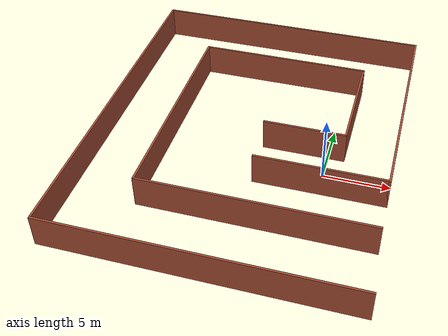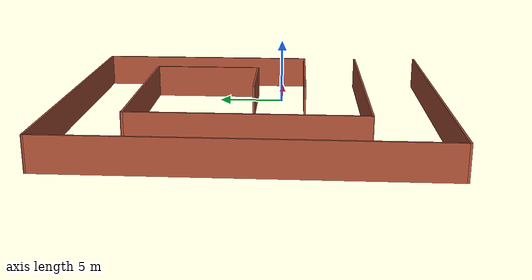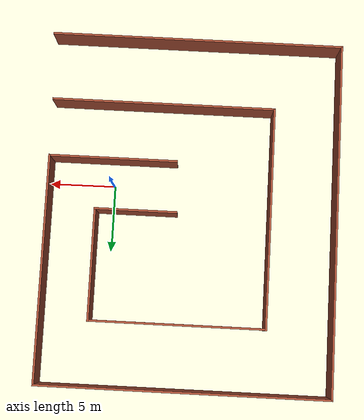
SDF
<sdf version="1.7">
 <world name="default">
  <scene><shadows>0</shadows><ambient>0.4 0.4 0.4 1</ambient><background>0.7 0.7 0.7 1</background></scene>
  <physics type="ode">
   <real_time_update_rate>1000</real_time_update_rate>
   <max_step_size>0.001</max_step_size>
   <real_time_factor>1</real_time_factor>
   <ode>
    <solver>
     <type>quick</type>
     <iters>150</iters>
     <precon_iters>0</precon_iters>
     <sor>1.4</sor>
     <use_dynamic_moi_rescaling>1</use_dynamic_moi_rescaling>
    </solver>
    <constraints>
     <cfm>1e-05</cfm>
     <erp>0.2</erp>
     <contact_max_correcting_vel>2000</contact_max_correcting_vel>
     <contact_surface_layer>0.01</contact_surface_layer>
    </constraints>
   </ode>
  </physics>
  <gravity>0 0 -9.8</gravity>
  <magnetic_field>6e-06 2.3e-05 -4.2e-05</magnetic_field>
  <atmosphere type="adiabatic"/>
  <audio><device>default</device></audio>
  <spherical_coordinates>
   <surface_model>EARTH_WGS84</surface_model>
   <latitude_deg>0</latitude_deg>
   <longitude_deg>0</longitude_deg>
   <elevation>0</elevation>
   <heading_deg>0</heading_deg>
  </spherical_coordinates>
  <model name="world">
   <pose>-5.90857 1.94145 0 0 -0 0</pose>
   <link name="Wall_10">
    <collision name="Wall_10_Collision">
     <geometry><box><size>13.3051 0.15 2.5</size></box></geometry>
     <pose>0 0 1.25 0 -0 0</pose>
    </collision>
    <visual name="Wall_10_Visual">
     <pose>0 0 1.25 0 -0 0</pose>
     <geometry><box><size>13.3051 0.15 2.5</size></box></geometry>
     <material>
      <script><uri>file://media/materials/scripts/gazebo.material</uri><name>Gazebo/Bricks</name></script>
      <ambient>1 1 1 1</ambient>
     </material>
     <meta><layer>0</layer></meta>
    </visual>
    <pose>0.51679 8.44126 0 0 -0 3.14159</pose>
   </link>
   <link name="Wall_11">
    <collision name="Wall_11_Collision">
     <geometry><box><size>16.7539 0.15 2.5</size></box></geometry>
     <pose>0 0 1.25 0 -0 0</pose>
    </collision>
    <visual name="Wall_11_Visual">
     <pose>0 0 1.25 0 -0 0</pose>
     <geometry><box><size>16.7539 0.15 2.5</size></box></geometry>
     <material>
      <script><uri>file://media/materials/scripts/gazebo.material</uri><name>Gazebo/Bricks</name></script>
      <ambient>1 1 1 1</ambient>
     </material>
     <meta><layer>0</layer></meta>
    </visual>
    <pose>-6.0607 0.179768 0 0 -0 -1.5708</pose>
   </link>
   <link name="Wall_12">
    <collision name="Wall_12_Collision">
     <geometry><box><size>17 0.15 2.5</size></box></geometry>
     <pose>0 0 1.25 0 -0 0</pose>
    </collision>
    <visual name="Wall_12_Visual">
     <pose>0 0 1.25 0 -0 0</pose>
     <geometry><box><size>17 0.15 2.5</size></box></geometry>
     <material>
      <script><uri>file://media/materials/scripts/gazebo.material</uri><name>Gazebo/Bricks</name></script>
      <ambient>1 1 1 1</ambient>
     </material>
     <meta><layer>0</layer></meta>
    </visual>
    <pose>2.36429 -8.16263 0 0 -0 0</pose>
   </link>
   <link name="Wall_15">
    <collision name="Wall_15_Collision">
     <geometry><box><size>9.75 0.15 2.5</size></box></geometry>
     <pose>0 0 1.25 0 -0 0</pose>
    </collision>
    <visual name="Wall_15_Visual">
     <pose>0 0 1.25 0 -0 0</pose>
     <geometry><box><size>9.75 0.15 2.5</size></box></geometry>
     <material>
      <script><uri>file://media/materials/scripts/gazebo.material</uri><name>Gazebo/Bricks</name></script>
      <ambient>1 1 1 1</ambient>
     </material>
     <meta><layer>0</layer></meta>
    </visual>
    <pose>5.97887 -3.785 0 0 -0 0</pose>
   </link>
   <link name="Wall_16">
    <collision name="Wall_16_Collision">
     <geometry><box><size>17.25 0.15 2.5</size></box></geometry>
     <pose>0 0 1.25 0 -0 0</pose>
    </collision>
    <visual name="Wall_16_Visual">
     <pose>0 0 1.25 0 -0 0</pose>
     <geometry><box><size>17.25 0.15 2.5</size></box></geometry>
     <material>
      <script><uri>file://media/materials/scripts/gazebo.material</uri><name>Gazebo/Bricks</name></script>
      <ambient>1 1 1 1</ambient>
     </material>
     <meta><layer>0</layer></meta>
    </visual>
    <pose>10.7789 4.765 0 0 -0 1.5708</pose>
   </link>
   <link name="Wall_17">
    <collision name="Wall_17_Collision">
     <geometry><box><size>22 0.15 2.5</size></box></geometry>
     <pose>0 0 1.25 0 -0 0</pose>
    </collision>
    <visual name="Wall_17_Visual">
     <pose>0 0 1.25 0 -0 0</pose>
     <geometry><box><size>22 0.15 2.5</size></box></geometry>
     <material>
      <script><uri>file://media/materials/scripts/gazebo.material</uri><name>Gazebo/Bricks</name></script>
      <ambient>1 1 1 1</ambient>
     </material>
     <meta><layer>0</layer></meta>
    </visual>
    <pose>-0.146132 13.315 0 0 -0 3.14159</pose>
   </link>
   <link name="Wall_18">
    <collision name="Wall_18_Collision">
     <geometry><box><size>26.6988 0.15 2.5</size></box></geometry>
     <pose>0 0 1.25 0 -0 0</pose>
    </collision>
    <visual name="Wall_18_Visual">
     <pose>0 0 1.25 0 -0 0</pose>
     <geometry><box><size>26.6988 0.15 2.5</size></box></geometry>
     <material>
      <script><uri>file://media/materials/scripts/gazebo.material</uri><name>Gazebo/Bricks</name></script>
      <ambient>1 1 1 1</ambient>
     </material>
     <meta><layer>0</layer></meta>
    </visual>
    <pose>-11.0499 0.040626 0 0 -0 -1.5692</pose>
   </link>
   <link name="Wall_19">
    <collision name="Wall_19_Collision">
     <geometry><box><size>22.25 0.15 2.5</size></box></geometry>
     <pose>0 0 1.25 0 -0 0</pose>
    </collision>
    <visual name="Wall_19_Visual">
     <pose>0 0 1.25 0 -0 0</pose>
     <geometry><box><size>22.25 0.15 2.5</size></box></geometry>
     <material>
      <script><uri>file://media/materials/scripts/gazebo.material</uri><name>Gazebo/Bricks</name></script>
      <ambient>1 1 1 1</ambient>
     </material>
     <meta><layer>0</layer></meta>
    </visual>
    <pose>0.021251 -13.3151 0 0 -0 0</pose>
   </link>
   <link name="Wall_8">
    <collision name="Wall_8_Collision">
     <geometry><box><size>6.25 0.15 2.5</size></box></geometry>
     <pose>0 0 1.25 0 -0 0</pose>
    </collision>
    <visual name="Wall_8_Visual">
     <pose>0 0 1.25 0 -0 0</pose>
     <geometry><box><size>6.25 0.15 2.5</size></box></geometry>
     <material>
      <script><uri>file://media/materials/scripts/gazebo.material</uri><name>Gazebo/Bricks</name></script>
      <ambient>1 1 1 1</ambient>
     </material>
     <meta><layer>0</layer></meta>
    </visual>
    <pose>4.04428 0.091256 0 0 -0 0</pose>
   </link>
   <link name="Wall_9">
    <collision name="Wall_9_Collision">
     <geometry><box><size>8.5 0.15 2.5</size></box></geometry>
     <pose>0 0 1.25 0 -0 0</pose>
    </collision>
    <visual name="Wall_9_Visual">
     <pose>0 0 1.25 0 -0 0</pose>
     <geometry><box><size>8.5 0.15 2.5</size></box></geometry>
     <material>
      <script><uri>file://media/materials/scripts/gazebo.material</uri><name>Gazebo/Bricks</name></script>
      <ambient>1 1 1 1</ambient>
     </material>
     <meta><layer>0</layer></meta>
    </visual>
    <pose>7.09428 4.26626 0 0 -0 1.5708</pose>
   </link>
   <static>1</static>
  </model>
 </world>
</sdf>
